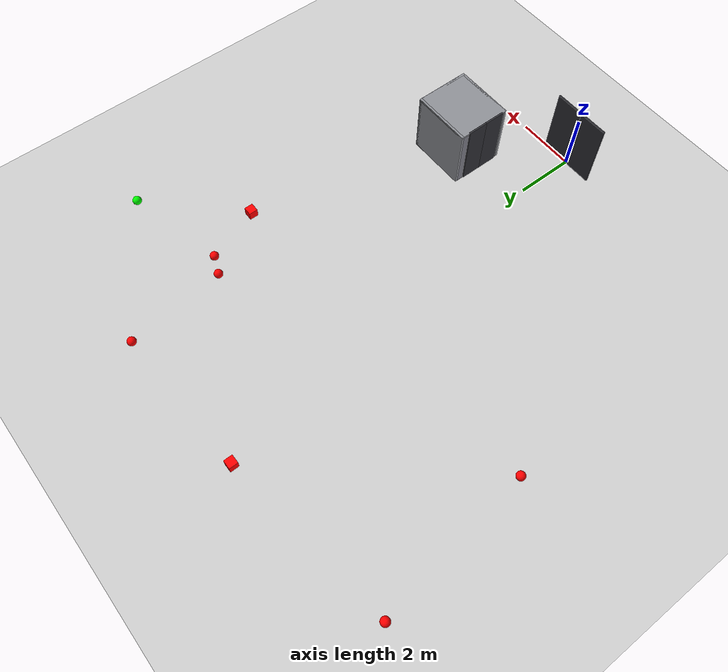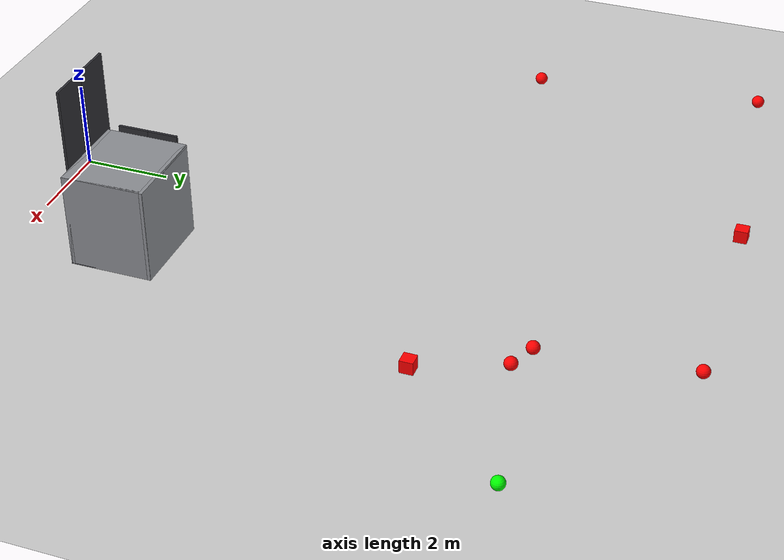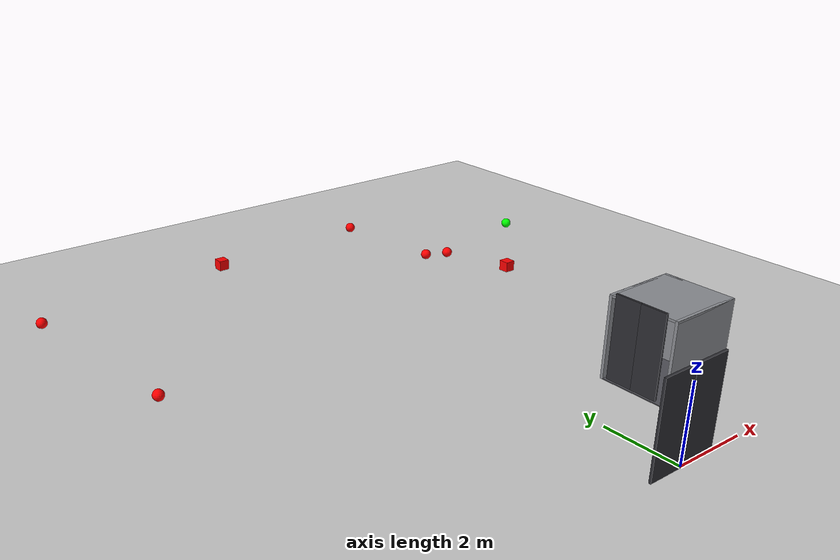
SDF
<sdf version="1.7">
 <world name="generated_world">
  <include><uri>model://sun</uri></include>
  <include><uri>model://ground_plane</uri></include>
  <model name="dynamic_main_entrance">
   <static>false</static>
   <pose>0.0000 0.0000 1.2000 0.0000 0.0000 1.5708</pose>
   <link name="left_panel">
    <gravity>false</gravity>
    <kinematic>true</kinematic>
    <pose>0.0000 -0.5000 0.0000 0.0000 0.0000 0.0000</pose>
    <collision name="left_panel_collision">
     <geometry><box><size>0.0600 1.0000 2.4000</size></box></geometry>
    </collision>
    <visual name="left_panel_visual">
     <geometry><box><size>0.0600 1.0000 2.4000</size></box></geometry>
     <material><ambient>0.18 0.18 0.20 1</ambient><diffuse>0.18 0.18 0.20 1</diffuse></material>
    </visual>
   </link>
   <link name="right_panel">
    <gravity>false</gravity>
    <kinematic>true</kinematic>
    <pose>0.0000 0.5000 0.0000 0.0000 0.0000 0.0000</pose>
    <collision name="right_panel_collision">
     <geometry><box><size>0.0600 1.0000 2.4000</size></box></geometry>
    </collision>
    <visual name="right_panel_visual">
     <geometry><box><size>0.0600 1.0000 2.4000</size></box></geometry>
     <material><ambient>0.18 0.18 0.20 1</ambient><diffuse>0.18 0.18 0.20 1</diffuse></material>
    </visual>
   </link>
  </model>
  <model name="dynamic_elevator_floor_0">
   <static>false</static>
   <pose>1.6500 2.6000 1.2000 0.0000 0.0000 3.1416</pose>
   <link name="left_panel">
    <gravity>false</gravity>
    <kinematic>true</kinematic>
    <pose>0.0000 -0.3500 0.0000 0.0000 0.0000 0.0000</pose>
    <collision name="left_panel_collision">
     <geometry><box><size>0.0600 0.7000 2.2000</size></box></geometry>
    </collision>
    <visual name="left_panel_visual">
     <geometry><box><size>0.0600 0.7000 2.2000</size></box></geometry>
     <material><ambient>0.18 0.18 0.20 1</ambient><diffuse>0.18 0.18 0.20 1</diffuse></material>
    </visual>
   </link>
   <link name="right_panel">
    <gravity>false</gravity>
    <kinematic>true</kinematic>
    <pose>0.0000 0.3500 0.0000 0.0000 0.0000 0.0000</pose>
    <collision name="right_panel_collision">
     <geometry><box><size>0.0600 0.7000 2.2000</size></box></geometry>
    </collision>
    <visual name="right_panel_visual">
     <geometry><box><size>0.0600 0.7000 2.2000</size></box></geometry>
     <material><ambient>0.18 0.18 0.20 1</ambient><diffuse>0.18 0.18 0.20 1</diffuse></material>
    </visual>
   </link>
  </model>
  <model name="dynamic_elevator_main">
   <static>false</static>
   <pose>2.7600 2.6000 1.0300 0.0000 0.0000 -1.5708</pose>
   <link name="car">
    <gravity>false</gravity>
    <kinematic>true</kinematic>
    <collision name="car_floor_collision">
     <pose>0.0000 0.0000 -1.0900 0.0000 0.0000 0.0000</pose>
     <geometry><box><size>1.9000 2.1000 0.1200</size></box></geometry>
    </collision>
    <visual name="car_floor_visual">
     <pose>0.0000 0.0000 -1.0900 0.0000 0.0000 0.0000</pose>
     <geometry><box><size>1.9000 2.1000 0.1200</size></box></geometry>
     <material><ambient>0.32 0.32 0.35 1</ambient><diffuse>0.32 0.32 0.35 1</diffuse></material>
    </visual>
    <collision name="back_collision">
     <pose>0.0000 1.0100 0.0000 0.0000 0.0000 0.0000</pose>
     <geometry><box><size>1.9000 0.0800 2.3000</size></box></geometry>
    </collision>
    <visual name="back_visual">
     <pose>0.0000 1.0100 0.0000 0.0000 0.0000 0.0000</pose>
     <geometry><box><size>1.9000 0.0800 2.3000</size></box></geometry>
     <material><ambient>0.55 0.56 0.58 1</ambient><diffuse>0.55 0.56 0.58 1</diffuse></material>
    </visual>
    <collision name="left_collision">
     <pose>-0.9100 0.0000 0.0000 0.0000 0.0000 0.0000</pose>
     <geometry><box><size>0.0800 2.1000 2.3000</size></box></geometry>
    </collision>
    <visual name="left_visual">
     <pose>-0.9100 0.0000 0.0000 0.0000 0.0000 0.0000</pose>
     <geometry><box><size>0.0800 2.1000 2.3000</size></box></geometry>
     <material><ambient>0.55 0.56 0.58 1</ambient><diffuse>0.55 0.56 0.58 1</diffuse></material>
    </visual>
    <collision name="right_collision">
     <pose>0.9100 0.0000 0.0000 0.0000 0.0000 0.0000</pose>
     <geometry><box><size>0.0800 2.1000 2.3000</size></box></geometry>
    </collision>
    <visual name="right_visual">
     <pose>0.9100 0.0000 0.0000 0.0000 0.0000 0.0000</pose>
     <geometry><box><size>0.0800 2.1000 2.3000</size></box></geometry>
     <material><ambient>0.55 0.56 0.58 1</ambient><diffuse>0.55 0.56 0.58 1</diffuse></material>
    </visual>
    <collision name="top_collision">
     <pose>0.0000 0.0000 1.1200 0.0000 0.0000 0.0000</pose>
     <geometry><box><size>1.9000 2.1000 0.0600</size></box></geometry>
    </collision>
    <visual name="top_visual">
     <pose>0.0000 0.0000 1.1200 0.0000 0.0000 0.0000</pose>
     <geometry><box><size>1.9000 2.1000 0.0600</size></box></geometry>
     <material><ambient>0.55 0.56 0.58 1</ambient><diffuse>0.55 0.56 0.58 1</diffuse></material>
    </visual>
   </link>
  </model>
  <model name="distractor_red_box_01">
   <static>true</static>
   <pose>-2.017717 15.113444 0.150000 0.000000 0.000000 0.000000</pose>
   <link name="link">
    <collision name="collision">
     <geometry><box><size>0.300000 0.300000 0.300000</size></box></geometry>
    </collision>
    <visual name="visual">
     <geometry><box><size>0.300000 0.300000 0.300000</size></box></geometry>
     <material><ambient>1.0 0.0 0.0 1.0</ambient><diffuse>1.0 0.0 0.0 1.0</diffuse></material>
    </visual>
   </link>
  </model>
  <model name="danger_red_sphere_03">
   <static>true</static>
   <pose>3.051083 15.370418 0.150000 0.000000 0.000000 0.000000</pose>
   <link name="link">
    <collision name="collision"><geometry><sphere><radius>0.150</radius></sphere></geometry></collision>
    <visual name="visual">
     <geometry><sphere><radius>0.150</radius></sphere></geometry>
     <material><ambient>1.0 0.0 0.0 1.0</ambient><diffuse>1.0 0.0 0.0 1.0</diffuse></material>
    </visual>
   </link>
  </model>
  <model name="distractor_red_box_03">
   <static>true</static>
   <pose>4.816098 9.799590 0.150000 0.000000 0.000000 0.000000</pose>
   <link name="link">
    <collision name="collision">
     <geometry><box><size>0.300000 0.300000 0.300000</size></box></geometry>
    </collision>
    <visual name="visual">
     <geometry><box><size>0.300000 0.300000 0.300000</size></box></geometry>
     <material><ambient>1.0 0.0 0.0 1.0</ambient><diffuse>1.0 0.0 0.0 1.0</diffuse></material>
    </visual>
   </link>
  </model>
  <model name="danger_red_sphere_04">
   <static>true</static>
   <pose>-7.955228 14.331924 0.150000 0.000000 0.000000 0.000000</pose>
   <link name="link">
    <collision name="collision"><geometry><sphere><radius>0.150</radius></sphere></geometry></collision>
    <visual name="visual">
     <geometry><sphere><radius>0.150</radius></sphere></geometry>
     <material><ambient>1.0 0.0 0.0 1.0</ambient><diffuse>1.0 0.0 0.0 1.0</diffuse></material>
    </visual>
   </link>
  </model>
  <model name="distractor_green_sphere_06">
   <static>true</static>
   <pose>7.536522 12.548863 0.150000 0.000000 0.000000 0.000000</pose>
   <link name="link">
    <collision name="collision"><geometry><sphere><radius>0.150</radius></sphere></geometry></collision>
    <visual name="visual">
     <geometry><sphere><radius>0.150</radius></sphere></geometry>
     <material><ambient>0.0 1.0 0.0 1.0</ambient><diffuse>0.0 1.0 0.0 1.0</diffuse></material>
    </visual>
   </link>
  </model>
  <model name="danger_red_sphere_07">
   <static>true</static>
   <pose>3.460155 11.977437 0.150000 0.000000 0.000000 0.000000</pose>
   <link name="link">
    <collision name="collision"><geometry><sphere><radius>0.150</radius></sphere></geometry></collision>
    <visual name="visual">
     <geometry><sphere><radius>0.150</radius></sphere></geometry>
     <material><ambient>1.0 0.0 0.0 1.0</ambient><diffuse>1.0 0.0 0.0 1.0</diffuse></material>
    </visual>
   </link>
  </model>
  <model name="danger_red_sphere_08">
   <static>true</static>
   <pose>-7.262082 8.945954 0.150000 0.000000 0.000000 0.000000</pose>
   <link name="link">
    <collision name="collision"><geometry><sphere><radius>0.150</radius></sphere></geometry></collision>
    <visual name="visual">
     <geometry><sphere><radius>0.150</radius></sphere></geometry>
     <material><ambient>1.0 0.0 0.0 1.0</ambient><diffuse>1.0 0.0 0.0 1.0</diffuse></material>
    </visual>
   </link>
  </model>
  <model name="danger_red_sphere_10">
   <static>true</static>
   <pose>4.103707 11.712428 0.150000 0.000000 0.000000 0.000000</pose>
   <link name="link">
    <collision name="collision"><geometry><sphere><radius>0.150</radius></sphere></geometry></collision>
    <visual name="visual">
     <geometry><sphere><radius>0.150</radius></sphere></geometry>
     <material><ambient>1.0 0.0 0.0 1.0</ambient><diffuse>1.0 0.0 0.0 1.0</diffuse></material>
    </visual>
   </link>
  </model>
 </world>
</sdf>
